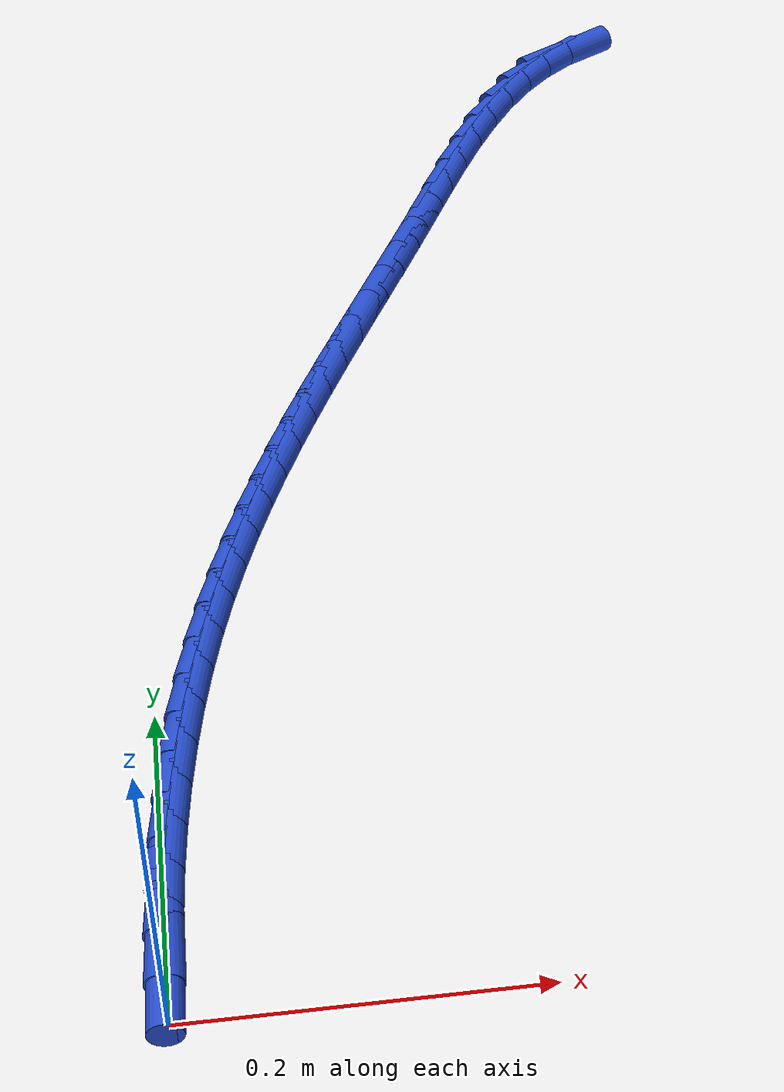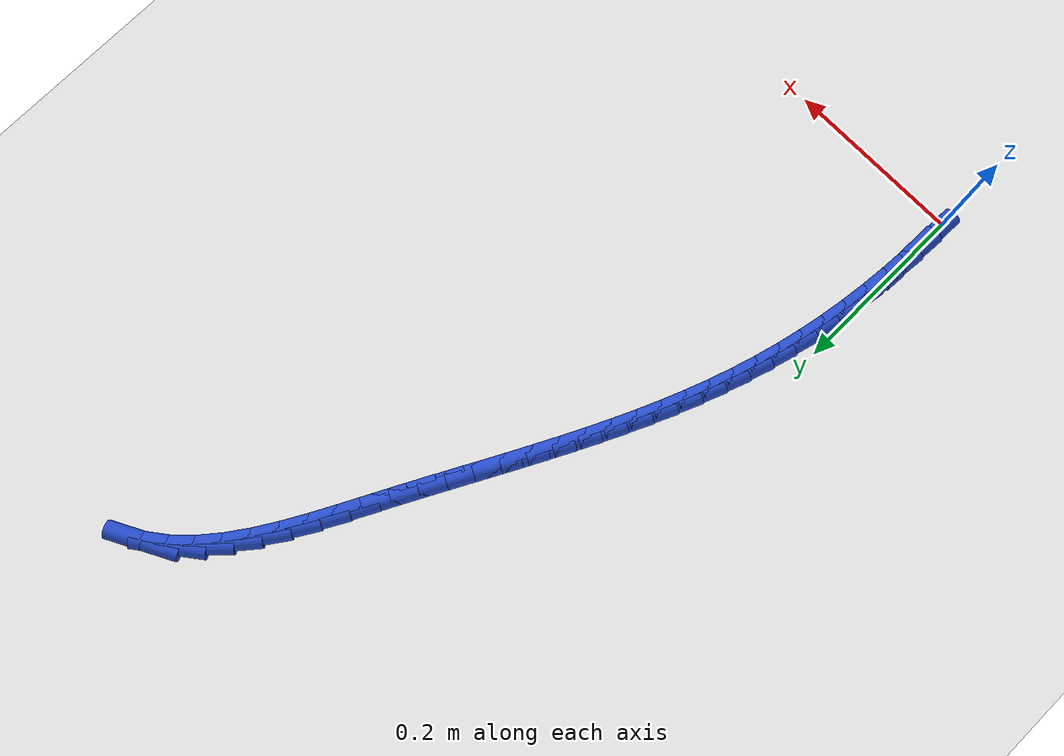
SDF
<sdf version="1.6">
 <world name="default">
  <model name="ground_plane">
   <static>1</static>
   <link name="link">
    <collision name="collision">
     <geometry><plane><normal>0 0 1</normal><size>100 100</size></plane></geometry>
     <surface><friction><ode><mu>100</mu><mu2>50</mu2></ode></friction></surface>
    </collision>
    <visual name="visual">
     <cast_shadows>0</cast_shadows>
     <geometry><plane><normal>0 0 1</normal><size>100 100</size></plane></geometry>
     <material>
      <script><uri>file://media/materials/scripts/gazebo.material</uri><name>Gazebo/WhiteGlow</name></script>
     </material>
    </visual>
   </link>
  </model>
  <model name="line">
   <link name="link_1">
    <pose>-3.949599730603932e-05 0.028352491751786908 0.01 0 1.57 1.5391424583876925</pose>
    <collision name="collision">
     <geometry><cylinder><radius>0.01</radius><length>0.08</length></cylinder></geometry>
    </collision>
    <visual name="visual">
     <material>
      <script><name>Gazebo/Blue</name><uri>file://media/materials/scripts/gazebo.material</uri></script>
     </material>
     <geometry><cylinder><radius>0.01</radius><length>0.08</length></cylinder></geometry>
    </visual>
   </link>
   <link name="link_2">
    <pose>0.0008617968186554742 0.056816367391230284 0.01 0 1.57 1.5065247086572837</pose>
    <collision name="collision">
     <geometry><cylinder><radius>0.01</radius><length>0.08</length></cylinder></geometry>
    </collision>
    <visual name="visual">
     <material>
      <script><name>Gazebo/Blue</name><uri>file://media/materials/scripts/gazebo.material</uri></script>
     </material>
     <geometry><cylinder><radius>0.01</radius><length>0.08</length></cylinder></geometry>
    </visual>
   </link>
   <link name="link_3">
    <pose>0.002695351151080766 0.08530528649512793 0.01 0 1.57 1.4741054942030591</pose>
    <collision name="collision">
     <geometry><cylinder><radius>0.01</radius><length>0.08</length></cylinder></geometry>
    </collision>
    <visual name="visual">
     <material>
      <script><name>Gazebo/Blue</name><uri>file://media/materials/scripts/gazebo.material</uri></script>
     </material>
     <geometry><cylinder><radius>0.01</radius><length>0.08</length></cylinder></geometry>
    </visual>
   </link>
   <link name="link_4">
    <pose>0.005452639703166053 0.1137329086402777 0.01 0 1.57 1.4416570284435628</pose>
    <collision name="collision">
     <geometry><cylinder><radius>0.01</radius><length>0.08</length></cylinder></geometry>
    </collision>
    <visual name="visual">
     <material>
      <script><name>Gazebo/Blue</name><uri>file://media/materials/scripts/gazebo.material</uri></script>
     </material>
     <geometry><cylinder><radius>0.01</radius><length>0.08</length></cylinder></geometry>
    </visual>
   </link>
   <link name="link_5">
    <pose>0.009125135178107547 0.14201289340347745 0.01 0 1.57 1.4089507274478563</pose>
    <collision name="collision">
     <geometry><cylinder><radius>0.01</radius><length>0.08</length></cylinder></geometry>
    </collision>
    <visual name="visual">
     <material>
      <script><name>Gazebo/Blue</name><uri>file://media/materials/scripts/gazebo.material</uri></script>
     </material>
     <geometry><cylinder><radius>0.01</radius><length>0.08</length></cylinder></geometry>
    </visual>
   </link>
   <link name="link_6">
    <pose>0.013704310279101475 0.17005890036152504 0.01 0 1.57 1.37575355927471</pose>
    <collision name="collision">
     <geometry><cylinder><radius>0.01</radius><length>0.08</length></cylinder></geometry>
    </collision>
    <visual name="visual">
     <material>
      <script><name>Gazebo/Blue</name><uri>file://media/materials/scripts/gazebo.material</uri></script>
     </material>
     <geometry><cylinder><radius>0.01</radius><length>0.08</length></cylinder></geometry>
    </visual>
   </link>
   <link name="link_7">
    <pose>0.01918163770934405 0.19778458909121838 0.01 0 1.57 1.341824347660938</pose>
    <collision name="collision">
     <geometry><cylinder><radius>0.01</radius><length>0.08</length></cylinder></geometry>
    </collision>
    <visual name="visual">
     <material>
      <script><name>Gazebo/Blue</name><uri>file://media/materials/scripts/gazebo.material</uri></script>
     </material>
     <geometry><cylinder><radius>0.01</radius><length>0.08</length></cylinder></geometry>
    </visual>
   </link>
   <link name="link_8">
    <pose>0.02554859017203147 0.22510361916935517 0.01 0 1.57 1.3071662377353224</pose>
    <collision name="collision">
     <geometry><cylinder><radius>0.01</radius><length>0.08</length></cylinder></geometry>
    </collision>
    <visual name="visual">
     <material>
      <script><name>Gazebo/Blue</name><uri>file://media/materials/scripts/gazebo.material</uri></script>
     </material>
     <geometry><cylinder><radius>0.01</radius><length>0.08</length></cylinder></geometry>
    </visual>
   </link>
   <link name="link_9">
    <pose>0.03279278655953867 0.25194269415838494 0.01 0 1.57 1.273605408722673</pose>
    <collision name="collision">
     <geometry><cylinder><radius>0.01</radius><length>0.08</length></cylinder></geometry>
    </collision>
    <visual name="visual">
     <material>
      <script><name>Gazebo/Blue</name><uri>file://media/materials/scripts/gazebo.material</uri></script>
     </material>
     <geometry><cylinder><radius>0.01</radius><length>0.08</length></cylinder></geometry>
    </visual>
   </link>
   <link name="link_10">
    <pose>0.04087300568513552 0.2783261325778687 0.01 0 1.57 1.2422582898592898</pose>
    <collision name="collision">
     <geometry><cylinder><radius>0.01</radius><length>0.08</length></cylinder></geometry>
    </collision>
    <visual name="visual">
     <material>
      <script><name>Gazebo/Blue</name><uri>file://media/materials/scripts/gazebo.material</uri></script>
     </material>
     <geometry><cylinder><radius>0.01</radius><length>0.08</length></cylinder></geometry>
    </visual>
   </link>
   <link name="link_11">
    <pose>0.04973495872216867 0.3043224829616471 0.01 0 1.57 1.2133895899583158</pose>
    <collision name="collision">
     <geometry><cylinder><radius>0.01</radius><length>0.08</length></cylinder></geometry>
    </collision>
    <visual name="visual">
     <material>
      <script><name>Gazebo/Blue</name><uri>file://media/materials/scripts/gazebo.material</uri></script>
     </material>
     <geometry><cylinder><radius>0.01</radius><length>0.08</length></cylinder></geometry>
    </visual>
   </link>
   <link name="link_12">
    <pose>0.05932429211186404 0.3300005129422387 0.01 0 1.57 1.1872097440048386</pose>
    <collision name="collision">
     <geometry><cylinder><radius>0.01</radius><length>0.08</length></cylinder></geometry>
    </collision>
    <visual name="visual">
     <material>
      <script><name>Gazebo/Blue</name><uri>file://media/materials/scripts/gazebo.material</uri></script>
     </material>
     <geometry><cylinder><radius>0.01</radius><length>0.08</length></cylinder></geometry>
    </visual>
   </link>
   <link name="link_13">
    <pose>0.06958665229544758 0.3554289901521617 0.01 0 1.57 1.1638787342023296</pose>
    <collision name="collision">
     <geometry><cylinder><radius>0.01</radius><length>0.08</length></cylinder></geometry>
    </collision>
    <visual name="visual">
     <material>
      <script><name>Gazebo/Blue</name><uri>file://media/materials/scripts/gazebo.material</uri></script>
     </material>
     <geometry><cylinder><radius>0.01</radius><length>0.08</length></cylinder></geometry>
    </visual>
   </link>
   <link name="link_14">
    <pose>0.08046768571414523 0.3806766822239342 0.01 0 1.57 1.1435080649976357</pose>
    <collision name="collision">
     <geometry><cylinder><radius>0.01</radius><length>0.08</length></cylinder></geometry>
    </collision>
    <visual name="visual">
     <material>
      <script><name>Gazebo/Blue</name><uri>file://media/materials/scripts/gazebo.material</uri></script>
     </material>
     <geometry><cylinder><radius>0.01</radius><length>0.08</length></cylinder></geometry>
    </visual>
   </link>
   <link name="link_15">
    <pose>0.09191303880918288 0.4058123567900747 0.01 0 1.57 1.1261644985109405</pose>
    <collision name="collision">
     <geometry><cylinder><radius>0.01</radius><length>0.08</length></cylinder></geometry>
    </collision>
    <visual name="visual">
     <material>
      <script><name>Gazebo/Blue</name><uri>file://media/materials/scripts/gazebo.material</uri></script>
     </material>
     <geometry><cylinder><radius>0.01</radius><length>0.08</length></cylinder></geometry>
    </visual>
   </link>
   <link name="link_16">
    <pose>0.10386835802178647 0.4309047814831012 0.01 0 1.57 1.1118748430932415</pose>
    <collision name="collision">
     <geometry><cylinder><radius>0.01</radius><length>0.08</length></cylinder></geometry>
    </collision>
    <visual name="visual">
     <material>
      <script><name>Gazebo/Blue</name><uri>file://media/materials/scripts/gazebo.material</uri></script>
     </material>
     <geometry><cylinder><radius>0.01</radius><length>0.08</length></cylinder></geometry>
    </visual>
   </link>
   <link name="link_17">
    <pose>0.11627928979318203 0.4560227239355324 0.01 0 1.57 1.1006311700484854</pose>
    <collision name="collision">
     <geometry><cylinder><radius>0.01</radius><length>0.08</length></cylinder></geometry>
    </collision>
    <visual name="visual">
     <material>
      <script><name>Gazebo/Blue</name><uri>file://media/materials/scripts/gazebo.material</uri></script>
     </material>
     <geometry><cylinder><radius>0.01</radius><length>0.08</length></cylinder></geometry>
    </visual>
   </link>
   <link name="link_18">
    <pose>0.12909148056459532 0.4812349517798862 0.01 0 1.57 1.092395968686328</pose>
    <collision name="collision">
     <geometry><cylinder><radius>0.01</radius><length>0.08</length></cylinder></geometry>
    </collision>
    <visual name="visual">
     <material>
      <script><name>Gazebo/Blue</name><uri>file://media/materials/scripts/gazebo.material</uri></script>
     </material>
     <geometry><cylinder><radius>0.01</radius><length>0.08</length></cylinder></geometry>
    </visual>
   </link>
   <link name="link_19">
    <pose>0.14225057677725245 0.5066102326486811 0.01 0 1.57 1.0871069014804415</pose>
    <collision name="collision">
     <geometry><cylinder><radius>0.01</radius><length>0.08</length></cylinder></geometry>
    </collision>
    <visual name="visual">
     <material>
      <script><name>Gazebo/Blue</name><uri>file://media/materials/scripts/gazebo.material</uri></script>
     </material>
     <geometry><cylinder><radius>0.01</radius><length>0.08</length></cylinder></geometry>
    </visual>
   </link>
   <link name="link_20">
    <pose>0.15570222487237922 0.5322173341744353 0.01 0 1.57 1.0846809634818508</pose>
    <collision name="collision">
     <geometry><cylinder><radius>0.01</radius><length>0.08</length></cylinder></geometry>
    </collision>
    <visual name="visual">
     <material>
      <script><name>Gazebo/Blue</name><uri>file://media/materials/scripts/gazebo.material</uri></script>
     </material>
     <geometry><cylinder><radius>0.01</radius><length>0.08</length></cylinder></geometry>
    </visual>
   </link>
   <link name="link_21">
    <pose>0.16939207129120165 0.5581250239896671 0.01 0 1.57 1.0850179688617407</pose>
    <collision name="collision">
     <geometry><cylinder><radius>0.01</radius><length>0.08</length></cylinder></geometry>
    </collision>
    <visual name="visual">
     <material>
      <script><name>Gazebo/Blue</name><uri>file://media/materials/scripts/gazebo.material</uri></script>
     </material>
     <geometry><cylinder><radius>0.01</radius><length>0.08</length></cylinder></geometry>
    </visual>
   </link>
   <link name="link_22">
    <pose>0.1832657624749457 0.584402069726895 0.01 0 1.57 1.0880033772344389</pose>
    <collision name="collision">
     <geometry><cylinder><radius>0.01</radius><length>0.08</length></cylinder></geometry>
    </collision>
    <visual name="visual">
     <material>
      <script><name>Gazebo/Blue</name><uri>file://media/materials/scripts/gazebo.material</uri></script>
     </material>
     <geometry><cylinder><radius>0.01</radius><length>0.08</length></cylinder></geometry>
    </visual>
   </link>
   <link name="link_23">
    <pose>0.19726894486483715 0.6111172390186367 0.01 0 1.57 1.0934970126998422</pose>
    <collision name="collision">
     <geometry><cylinder><radius>0.01</radius><length>0.08</length></cylinder></geometry>
    </collision>
    <visual name="visual">
     <material>
      <script><name>Gazebo/Blue</name><uri>file://media/materials/scripts/gazebo.material</uri></script>
     </material>
     <geometry><cylinder><radius>0.01</radius><length>0.08</length></cylinder></geometry>
    </visual>
   </link>
   <link name="link_24">
    <pose>0.21134749198215816 0.638338836520691 0.01 0 1.57 1.0968751258752913</pose>
    <collision name="collision">
     <geometry><cylinder><radius>0.01</radius><length>0.08</length></cylinder></geometry>
    </collision>
    <visual name="visual">
     <material>
      <script><name>Gazebo/Blue</name><uri>file://media/materials/scripts/gazebo.material</uri></script>
     </material>
     <geometry><cylinder><radius>0.01</radius><length>0.08</length></cylinder></geometry>
    </visual>
   </link>
   <link name="link_25">
    <pose>0.22552411821669302 0.6659785017290284 0.01 0 1.57 1.0872540606396397</pose>
    <collision name="collision">
     <geometry><cylinder><radius>0.01</radius><length>0.08</length></cylinder></geometry>
    </collision>
    <visual name="visual">
     <material>
      <script><name>Gazebo/Blue</name><uri>file://media/materials/scripts/gazebo.material</uri></script>
     </material>
     <geometry><cylinder><radius>0.01</radius><length>0.08</length></cylinder></geometry>
    </visual>
   </link>
   <link name="link_26">
    <pose>0.24000983792865996 0.6935639632659113 0.01 0 1.57 1.062751894119248</pose>
    <collision name="collision">
     <geometry><cylinder><radius>0.01</radius><length>0.08</length></cylinder></geometry>
    </collision>
    <visual name="visual">
     <material>
      <script><name>Gazebo/Blue</name><uri>file://media/materials/scripts/gazebo.material</uri></script>
     </material>
     <geometry><cylinder><radius>0.01</radius><length>0.08</length></cylinder></geometry>
    </visual>
   </link>
   <link name="link_27">
    <pose>0.25504397944585805 0.7205652225006063 0.01 0 1.57 1.0221900369419215</pose>
    <collision name="collision">
     <geometry><cylinder><radius>0.01</radius><length>0.08</length></cylinder></geometry>
    </collision>
    <visual name="visual">
     <material>
      <script><name>Gazebo/Blue</name><uri>file://media/materials/scripts/gazebo.material</uri></script>
     </material>
     <geometry><cylinder><radius>0.01</radius><length>0.08</length></cylinder></geometry>
    </visual>
   </link>
   <link name="link_28">
    <pose>0.27086587109608634 0.7464522808023796 0.01 0 1.57 0.9634288575000315</pose>
    <collision name="collision">
     <geometry><cylinder><radius>0.01</radius><length>0.08</length></cylinder></geometry>
    </collision>
    <visual name="visual">
     <material>
      <script><name>Gazebo/Blue</name><uri>file://media/materials/scripts/gazebo.material</uri></script>
     </material>
     <geometry><cylinder><radius>0.01</radius><length>0.08</length></cylinder></geometry>
    </visual>
   </link>
   <link name="link_29">
    <pose>0.2877148412071439 0.7706951395404976 0.01 0 1.57 0.8834620583202922</pose>
    <collision name="collision">
     <geometry><cylinder><radius>0.01</radius><length>0.08</length></cylinder></geometry>
    </collision>
    <visual name="visual">
     <material>
      <script><name>Gazebo/Blue</name><uri>file://media/materials/scripts/gazebo.material</uri></script>
     </material>
     <geometry><cylinder><radius>0.01</radius><length>0.08</length></cylinder></geometry>
    </visual>
   </link>
   <link name="link_30">
    <pose>0.3058302181068301 0.7927638000842276 0.01 0 1.57 0.7788150981169186</pose>
    <collision name="collision">
     <geometry><cylinder><radius>0.01</radius><length>0.08</length></cylinder></geometry>
    </collision>
    <visual name="visual">
     <material>
      <script><name>Gazebo/Blue</name><uri>file://media/materials/scripts/gazebo.material</uri></script>
     </material>
     <geometry><cylinder><radius>0.01</radius><length>0.08</length></cylinder></geometry>
    </visual>
   </link>
   <link name="link_31">
    <pose>0.32545133012294375 0.8121282638028356 0.01 0 1.57 0.6466578356032517</pose>
    <collision name="collision">
     <geometry><cylinder><radius>0.01</radius><length>0.08</length></cylinder></geometry>
    </collision>
    <visual name="visual">
     <material>
      <script><name>Gazebo/Blue</name><uri>file://media/materials/scripts/gazebo.material</uri></script>
     </material>
     <geometry><cylinder><radius>0.01</radius><length>0.08</length></cylinder></geometry>
    </visual>
   </link>
   <link name="link_32">
    <pose>0.34681750558328417 0.8282585320655882 0.01 0 1.57 0.4870333298438299</pose>
    <collision name="collision">
     <geometry><cylinder><radius>0.01</radius><length>0.08</length></cylinder></geometry>
    </collision>
    <visual name="visual">
     <material>
      <script><name>Gazebo/Blue</name><uri>file://media/materials/scripts/gazebo.material</uri></script>
     </material>
     <geometry><cylinder><radius>0.01</radius><length>0.08</length></cylinder></geometry>
    </visual>
   </link>
   <link name="link_271">
    <pose>-2.14171783782793e-05 0.028376593053517397 0.01 0 1.57 1.5349140133734915</pose>
    <collision name="collision">
     <geometry><cylinder><radius>0.01</radius><length>0.08</length></cylinder></geometry>
    </collision>
    <visual name="visual">
     <material>
      <script><name>Gazebo/Blue</name><uri>file://media/materials/scripts/gazebo.material</uri></script>
     </material>
     <geometry><cylinder><radius>0.01</radius><length>0.08</length></cylinder></geometry>
    </visual>
   </link>
   <link name="link_272">
    <pose>0.0010064273700774772 0.05700917780507213 0.01 0 1.57 1.553144382399861</pose>
    <collision name="collision">
     <geometry><cylinder><radius>0.01</radius><length>0.08</length></cylinder></geometry>
    </collision>
    <visual name="visual">
     <material>
      <script><name>Gazebo/Blue</name><uri>file://media/materials/scripts/gazebo.material</uri></script>
     </material>
     <geometry><cylinder><radius>0.01</radius><length>0.08</length></cylinder></geometry>
    </visual>
   </link>
  </model>
 </world>
</sdf>
